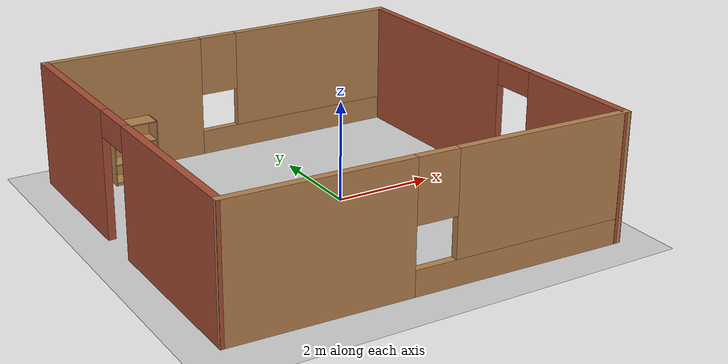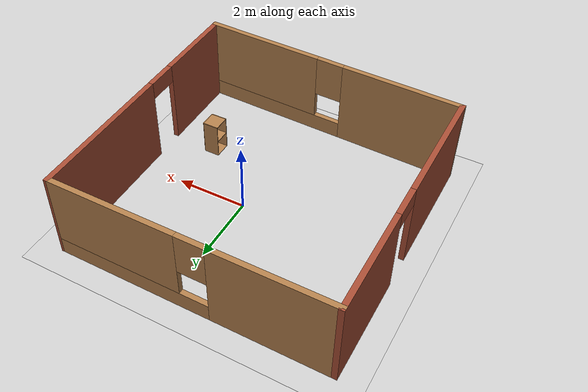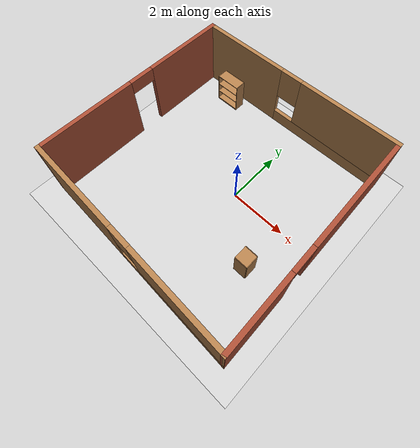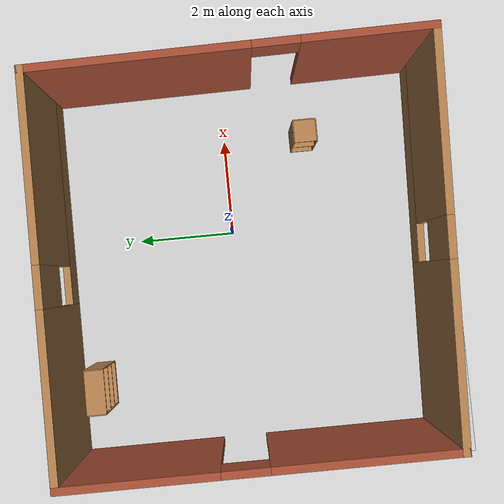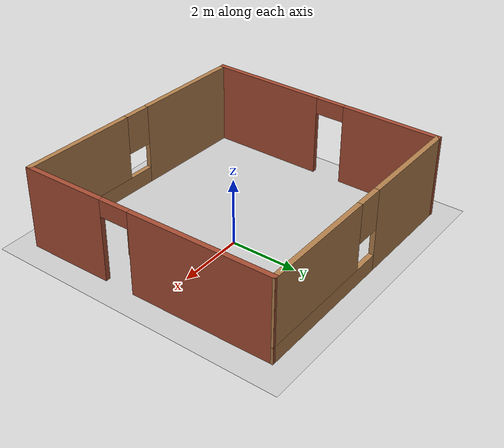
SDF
<sdf version="1.7">
 <world name="default">
  <light name="sun" type="directional">
   <pose>0 0 10 0 -0 0</pose>
   <diffuse>0.8 0.8 0.8 1</diffuse>
   <specular>0.2 0.2 0.2 1</specular>
   <attenuation>
    <range>1000</range>
    <constant>0.9</constant>
    <linear>0.01</linear>
    <quadratic>0.001</quadratic>
   </attenuation>
   <direction>-0.5 0.1 -0.9</direction>
   <spot><inner_angle>0</inner_angle><outer_angle>0</outer_angle><falloff>0</falloff></spot>
  </light>
  <model name="ground_plane">
   <static>1</static>
   <link name="link">
    <collision name="collision">
     <geometry><plane><normal>0 0 1</normal><size>100 100</size></plane></geometry>
     <surface>
      <contact><collide_bitmask>65535</collide_bitmask></contact>
      <friction><ode><mu>100</mu><mu2>50</mu2></ode></friction>
     </surface>
    </collision>
    <visual name="visual">
     <cast_shadows>0</cast_shadows>
     <geometry><plane><normal>0 0 1</normal><size>100 100</size></plane></geometry>
     <material>
      <script><uri>file://media/materials/scripts/gazebo.material</uri><name>Gazebo/Grey</name></script>
     </material>
    </visual>
   </link>
  </model>
  <gravity>0 0 -9.8</gravity>
  <magnetic_field>6e-06 2.3e-05 -4.2e-05</magnetic_field>
  <atmosphere type="adiabatic"/>
  <physics type="ode">
   <max_step_size>0.001</max_step_size>
   <real_time_factor>1</real_time_factor>
   <real_time_update_rate>1000</real_time_update_rate>
  </physics>
  <scene><ambient>0.4 0.4 0.4 1</ambient><background>0.7 0.7 0.7 1</background><shadows>1</shadows></scene>
  <audio><device>default</device></audio>
  <spherical_coordinates>
   <surface_model>EARTH_WGS84</surface_model>
   <latitude_deg>0</latitude_deg>
   <longitude_deg>0</longitude_deg>
   <elevation>0</elevation>
   <heading_deg>0</heading_deg>
  </spherical_coordinates>
  <model name="test">
   <pose>-0.593734 -0.26396 0 0 -0 0</pose>
   <link name="Wall_10">
    <pose>-0.004271 -3.67427 0 0 -0 -0.033669</pose>
    <visual name="Wall_10_Visual_0">
     <pose>-2.16285 0 1.25 0 -0 0</pose>
     <geometry><box><size>3.52338 0.15 2.5</size></box></geometry>
     <material>
      <script><uri>file://media/materials/scripts/gazebo.material</uri><name>Gazebo/Wood</name></script>
      <ambient>1 1 1 1</ambient>
     </material>
     <meta><layer>0</layer></meta>
    </visual>
    <collision name="Wall_10_Collision_0">
     <geometry><box><size>3.52338 0.15 2.5</size></box></geometry>
     <pose>-2.16285 0 1.25 0 -0 0</pose>
    </collision>
    <visual name="Wall_10_Visual_1">
     <pose>1.76169 0 0.25 0 -0 0</pose>
     <geometry><box><size>4.32569 0.15 0.5</size></box></geometry>
     <material>
      <script><uri>file://media/materials/scripts/gazebo.material</uri><name>Gazebo/Wood</name></script>
      <ambient>1 1 1 1</ambient>
     </material>
     <meta><layer>0</layer></meta>
    </visual>
    <collision name="Wall_10_Collision_1">
     <geometry><box><size>4.32569 0.15 0.5</size></box></geometry>
     <pose>1.76169 0 0.25 0 -0 0</pose>
    </collision>
    <visual name="Wall_10_Visual_2">
     <pose>2.16169 0 1.5 0 -0 0</pose>
     <geometry><box><size>3.52569 0.15 2</size></box></geometry>
     <material>
      <script><uri>file://media/materials/scripts/gazebo.material</uri><name>Gazebo/Wood</name></script>
      <ambient>1 1 1 1</ambient>
     </material>
     <meta><layer>0</layer></meta>
    </visual>
    <collision name="Wall_10_Collision_2">
     <geometry><box><size>3.52569 0.15 2</size></box></geometry>
     <pose>2.16169 0 1.5 0 -0 0</pose>
    </collision>
    <visual name="Wall_10_Visual_3">
     <pose>-0.001159 0 1.9 0 -0 0</pose>
     <geometry><box><size>0.8 0.15 1.2</size></box></geometry>
     <material>
      <script><uri>file://media/materials/scripts/gazebo.material</uri><name>Gazebo/Wood</name></script>
      <ambient>1 1 1 1</ambient>
     </material>
     <meta><layer>0</layer></meta>
    </visual>
    <collision name="Wall_10_Collision_3">
     <geometry><box><size>0.8 0.15 1.2</size></box></geometry>
     <pose>-0.001159 0 1.9 0 -0 0</pose>
    </collision>
   </link>
   <link name="Wall_14">
    <pose>-3.85162 0.130315 0 0 -0 1.5708</pose>
    <visual name="Wall_14_Visual_0">
     <pose>-1.96575 0 1.25 0 -0 0</pose>
     <geometry><box><size>3.56849 0.15 2.5</size></box></geometry>
     <material>
      <script><uri>file://media/materials/scripts/gazebo.material</uri><name>Gazebo/Bricks</name></script>
      <ambient>1 1 1 1</ambient>
     </material>
     <meta><layer>0</layer></meta>
    </visual>
    <collision name="Wall_14_Collision_0">
     <geometry><box><size>3.56849 0.15 2.5</size></box></geometry>
     <pose>-1.96575 0 1.25 0 -0 0</pose>
    </collision>
    <visual name="Wall_14_Visual_1">
     <pose>2.23425 0 1.25 0 -0 0</pose>
     <geometry><box><size>3.03151 0.15 2.5</size></box></geometry>
     <material>
      <script><uri>file://media/materials/scripts/gazebo.material</uri><name>Gazebo/Bricks</name></script>
      <ambient>1 1 1 1</ambient>
     </material>
     <meta><layer>0</layer></meta>
    </visual>
    <collision name="Wall_14_Collision_1">
     <geometry><box><size>3.03151 0.15 2.5</size></box></geometry>
     <pose>2.23425 0 1.25 0 -0 0</pose>
    </collision>
    <visual name="Wall_14_Visual_2">
     <pose>0.268494 0 2.25 0 -0 0</pose>
     <geometry><box><size>0.9 0.15 0.5</size></box></geometry>
     <material>
      <script><uri>file://media/materials/scripts/gazebo.material</uri><name>Gazebo/Bricks</name></script>
      <ambient>1 1 1 1</ambient>
     </material>
     <meta><layer>0</layer></meta>
    </visual>
    <collision name="Wall_14_Collision_2">
     <geometry><box><size>0.9 0.15 0.5</size></box></geometry>
     <pose>0.268494 0 2.25 0 -0 0</pose>
    </collision>
   </link>
   <link name="Wall_15">
    <pose>-0.051624 3.80531 0 0 -0 0</pose>
    <visual name="Wall_15_Visual_0">
     <pose>-2.21822 0 1.25 0 -0 0</pose>
     <geometry><box><size>3.31355 0.15 2.5</size></box></geometry>
     <material>
      <script><uri>file://media/materials/scripts/gazebo.material</uri><name>Gazebo/Wood</name></script>
      <ambient>1 1 1 1</ambient>
     </material>
     <meta><layer>0</layer></meta>
    </visual>
    <collision name="Wall_15_Collision_0">
     <geometry><box><size>3.31355 0.15 2.5</size></box></geometry>
     <pose>-2.21822 0 1.25 0 -0 0</pose>
    </collision>
    <visual name="Wall_15_Visual_1">
     <pose>1.65678 0 0.25 0 -0 0</pose>
     <geometry><box><size>4.43645 0.15 0.5</size></box></geometry>
     <material>
      <script><uri>file://media/materials/scripts/gazebo.material</uri><name>Gazebo/Wood</name></script>
      <ambient>1 1 1 1</ambient>
     </material>
     <meta><layer>0</layer></meta>
    </visual>
    <collision name="Wall_15_Collision_1">
     <geometry><box><size>4.43645 0.15 0.5</size></box></geometry>
     <pose>1.65678 0 0.25 0 -0 0</pose>
    </collision>
    <visual name="Wall_15_Visual_2">
     <pose>2.05678 0 1.5 0 -0 0</pose>
     <geometry><box><size>3.63645 0.15 2</size></box></geometry>
     <material>
      <script><uri>file://media/materials/scripts/gazebo.material</uri><name>Gazebo/Wood</name></script>
      <ambient>1 1 1 1</ambient>
     </material>
     <meta><layer>0</layer></meta>
    </visual>
    <collision name="Wall_15_Collision_2">
     <geometry><box><size>3.63645 0.15 2</size></box></geometry>
     <pose>2.05678 0 1.5 0 -0 0</pose>
    </collision>
    <visual name="Wall_15_Visual_3">
     <pose>-0.16145 0 1.9 0 -0 0</pose>
     <geometry><box><size>0.8 0.15 1.2</size></box></geometry>
     <material>
      <script><uri>file://media/materials/scripts/gazebo.material</uri><name>Gazebo/Wood</name></script>
      <ambient>1 1 1 1</ambient>
     </material>
     <meta><layer>0</layer></meta>
    </visual>
    <collision name="Wall_15_Collision_3">
     <geometry><box><size>0.8 0.15 1.2</size></box></geometry>
     <pose>-0.16145 0 1.9 0 -0 0</pose>
    </collision>
   </link>
   <link name="Wall_16">
    <pose>3.80073 0.000729 0 0 -0 -1.55704</pose>
    <visual name="Wall_16_Visual_0">
     <pose>-1.73036 0 1.25 0 -0 0</pose>
     <geometry><box><size>4.29918 0.15 2.5</size></box></geometry>
     <material>
      <script><uri>file://media/materials/scripts/gazebo.material</uri><name>Gazebo/Bricks</name></script>
      <ambient>1 1 1 1</ambient>
     </material>
     <meta><layer>0</layer></meta>
    </visual>
    <collision name="Wall_16_Collision_0">
     <geometry><box><size>4.29918 0.15 2.5</size></box></geometry>
     <pose>-1.73036 0 1.25 0 -0 0</pose>
    </collision>
    <visual name="Wall_16_Visual_1">
     <pose>2.59959 0 1.25 0 -0 0</pose>
     <geometry><box><size>2.56072 0.15 2.5</size></box></geometry>
     <material>
      <script><uri>file://media/materials/scripts/gazebo.material</uri><name>Gazebo/Bricks</name></script>
      <ambient>1 1 1 1</ambient>
     </material>
     <meta><layer>0</layer></meta>
    </visual>
    <collision name="Wall_16_Collision_1">
     <geometry><box><size>2.56072 0.15 2.5</size></box></geometry>
     <pose>2.59959 0 1.25 0 -0 0</pose>
    </collision>
    <visual name="Wall_16_Visual_2">
     <pose>0.869231 0 2.25 0 -0 0</pose>
     <geometry><box><size>0.9 0.15 0.5</size></box></geometry>
     <material>
      <script><uri>file://media/materials/scripts/gazebo.material</uri><name>Gazebo/Bricks</name></script>
      <ambient>1 1 1 1</ambient>
     </material>
     <meta><layer>0</layer></meta>
    </visual>
    <collision name="Wall_16_Collision_2">
     <geometry><box><size>0.9 0.15 0.5</size></box></geometry>
     <pose>0.869231 0 2.25 0 -0 0</pose>
    </collision>
   </link>
   <static>1</static>
  </model>
  <model name="bookshelf">
   <static>1</static>
   <link name="link">
    <inertial><mass>1</mass></inertial>
    <collision name="back">
     <pose>0 0.005 0.6 0 -0 0</pose>
     <geometry><box><size>0.9 0.01 1.2</size></box></geometry>
    </collision>
    <visual name="visual1">
     <pose>0 0.005 0.6 0 -0 0</pose>
     <geometry><box><size>0.9 0.01 1.2</size></box></geometry>
     <material>
      <script><uri>file://media/materials/scripts/gazebo.material</uri><name>Gazebo/Wood</name></script>
     </material>
    </visual>
    <collision name="left_side">
     <pose>0.45 -0.195 0.6 0 -0 0</pose>
     <geometry><box><size>0.02 0.4 1.2</size></box></geometry>
    </collision>
    <visual name="visual2">
     <pose>0.45 -0.195 0.6 0 -0 0</pose>
     <geometry><box><size>0.02 0.4 1.2</size></box></geometry>
     <material>
      <script><uri>file://media/materials/scripts/gazebo.material</uri><name>Gazebo/Wood</name></script>
     </material>
    </visual>
    <collision name="right_side">
     <pose>-0.45 -0.195 0.6 0 -0 0</pose>
     <geometry><box><size>0.02 0.4 1.2</size></box></geometry>
    </collision>
    <visual name="visual3">
     <pose>-0.45 -0.195 0.6 0 -0 0</pose>
     <geometry><box><size>0.02 0.4 1.2</size></box></geometry>
     <material>
      <script><uri>file://media/materials/scripts/gazebo.material</uri><name>Gazebo/Wood</name></script>
     </material>
    </visual>
    <collision name="bottom">
     <pose>0 -0.195 0.03 0 -0 0</pose>
     <geometry><box><size>0.88 0.4 0.06</size></box></geometry>
    </collision>
    <visual name="visual4">
     <pose>0 -0.195 0.03 0 -0 0</pose>
     <geometry><box><size>0.88 0.4 0.06</size></box></geometry>
     <material>
      <script><uri>file://media/materials/scripts/gazebo.material</uri><name>Gazebo/Wood</name></script>
     </material>
    </visual>
    <collision name="top">
     <pose>0 -0.195 1.19 0 -0 0</pose>
     <geometry><box><size>0.88 0.4 0.02</size></box></geometry>
    </collision>
    <visual name="visual5">
     <pose>0 -0.195 1.19 0 -0 0</pose>
     <geometry><box><size>0.88 0.4 0.02</size></box></geometry>
     <material>
      <script><uri>file://media/materials/scripts/gazebo.material</uri><name>Gazebo/Wood</name></script>
     </material>
    </visual>
    <collision name="low_shelf">
     <pose>0 -0.195 0.43 0 -0 0</pose>
     <geometry><box><size>0.88 0.4 0.02</size></box></geometry>
    </collision>
    <visual name="visual6">
     <pose>0 -0.195 0.43 0 -0 0</pose>
     <geometry><box><size>0.88 0.4 0.02</size></box></geometry>
     <material>
      <script><uri>file://media/materials/scripts/gazebo.material</uri><name>Gazebo/Wood</name></script>
     </material>
    </visual>
    <collision name="high_shelf">
     <pose>0 -0.195 0.8 0 -0 0</pose>
     <geometry><box><size>0.88 0.4 0.02</size></box></geometry>
    </collision>
    <visual name="visual7">
     <pose>0 -0.195 0.8 0 -0 0</pose>
     <geometry><box><size>0.88 0.4 0.02</size></box></geometry>
     <material>
      <script><uri>file://media/materials/scripts/gazebo.material</uri><name>Gazebo/Wood</name></script>
     </material>
    </visual>
   </link>
   <pose>-2.97951 3.19523 0 0 -0 0</pose>
  </model>
  <model name="cabinet">
   <static>1</static>
   <link name="cabinet_bottom_plate">
    <inertial>
     <pose>0 0 -1 0 -0 0</pose>
     <inertia><ixx>2.05</ixx><ixy>0</ixy><ixz>0</ixz><iyy>2.05</iyy><iyz>0</iyz><izz>2.05</izz></inertia>
     <mass>25</mass>
    </inertial>
    <collision name="cabinet_bottom_plate_geom">
     <pose>0 0 0.01 0 -0 0</pose>
     <geometry><box><size>0.45 0.45 0.02</size></box></geometry>
    </collision>
    <visual name="cabinet_bottom_plate_geom_visual">
     <pose>0 0 0.01 0 -0 0</pose>
     <geometry><box><size>0.45 0.45 0.02</size></box></geometry>
     <material>
      <script><uri>file://media/materials/scripts/gazebo.material</uri><name>Gazebo/Wood</name></script>
     </material>
    </visual>
    <collision name="cabinet_bottom_plate_geom_cabinet_back_plate">
     <pose>0.235 0 0.51 0 -0 0</pose>
     <geometry><box><size>0.02 0.45 1.02</size></box></geometry>
    </collision>
    <visual name="cabinet_bottom_plate_geom_cabinet_back_plate_visual">
     <pose>0.235 0 0.51 0 -0 0</pose>
     <geometry><box><size>0.02 0.45 1.02</size></box></geometry>
     <material>
      <script><uri>file://media/materials/scripts/gazebo.material</uri><name>Gazebo/Wood</name></script>
     </material>
    </visual>
    <collision name="cabinet_bottom_plate_geom_cabinet_left_plate">
     <pose>0 0.235 0.51 0 -0 0</pose>
     <geometry><box><size>0.45 0.02 1.02</size></box></geometry>
    </collision>
    <visual name="cabinet_bottom_plate_geom_cabinet_left_plate_visual">
     <pose>0 0.235 0.51 0 -0 0</pose>
     <geometry><box><size>0.45 0.02 1.02</size></box></geometry>
     <material>
      <script><uri>file://media/materials/scripts/gazebo.material</uri><name>Gazebo/Wood</name></script>
     </material>
    </visual>
    <collision name="cabinet_bottom_plate_geom_cabinet_middle_plate">
     <pose>0 0 0.51 0 -0 0</pose>
     <geometry><box><size>0.45 0.45 0.02</size></box></geometry>
    </collision>
    <visual name="cabinet_bottom_plate_geom_cabinet_middle_plate_visual">
     <pose>0 0 0.51 0 -0 0</pose>
     <geometry><box><size>0.45 0.45 0.02</size></box></geometry>
     <material>
      <script><uri>file://media/materials/scripts/gazebo.material</uri><name>Gazebo/Wood</name></script>
     </material>
    </visual>
    <collision name="cabinet_bottom_plate_geom_cabinet_right_plate">
     <pose>0 -0.235 0.51 0 -0 0</pose>
     <geometry><box><size>0.45 0.02 1.02</size></box></geometry>
    </collision>
    <visual name="cabinet_bottom_plate_geom_cabinet_right_plate_visual">
     <pose>0 -0.235 0.51 0 -0 0</pose>
     <geometry><box><size>0.45 0.02 1.02</size></box></geometry>
     <material>
      <script><uri>file://media/materials/scripts/gazebo.material</uri><name>Gazebo/Wood</name></script>
     </material>
    </visual>
    <collision name="cabinet_bottom_plate_geom_cabinet_top_plate">
     <pose>0 0 1.01 0 -0 0</pose>
     <geometry><box><size>0.45 0.45 0.02</size></box></geometry>
    </collision>
    <visual name="cabinet_bottom_plate_geom_cabinet_top_plate_visual">
     <pose>0 0 1.01 0 -0 0</pose>
     <geometry><box><size>0.45 0.45 0.02</size></box></geometry>
     <material>
      <script><uri>file://media/materials/scripts/gazebo.material</uri><name>Gazebo/Wood</name></script>
     </material>
    </visual>
   </link>
   <pose>1.87441 -1.66844 0 0 -0 0</pose>
  </model>
 </world>
</sdf>
